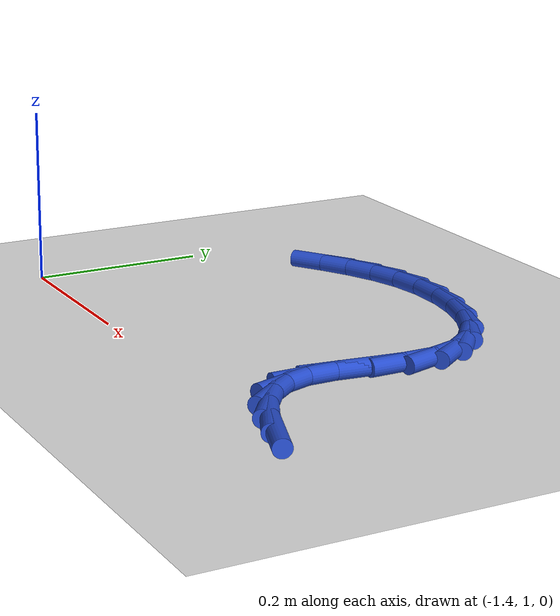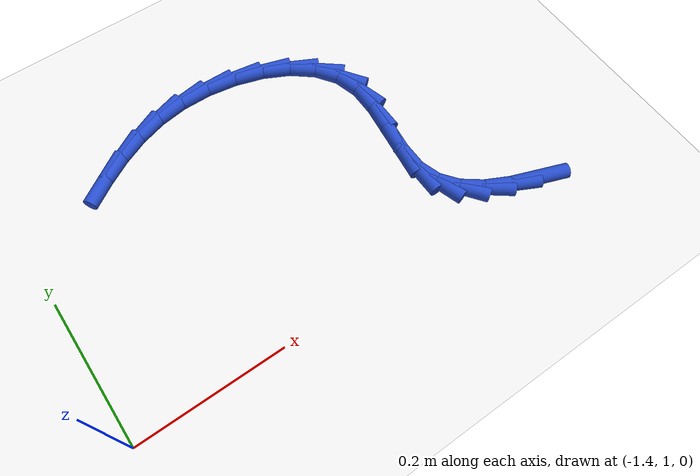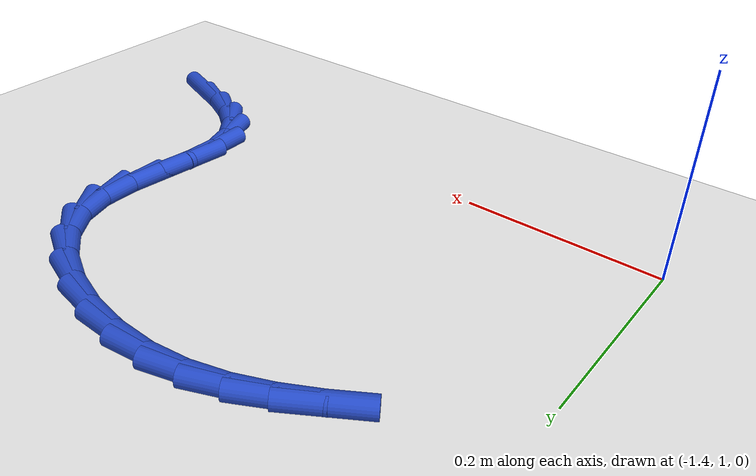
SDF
<sdf version="1.6">
 <world name="default">
  <model name="ground_plane">
   <static>1</static>
   <link name="link">
    <collision name="collision">
     <geometry><plane><normal>0 0 1</normal><size>100 100</size></plane></geometry>
     <surface><friction><ode><mu>100</mu><mu2>50</mu2></ode></friction></surface>
    </collision>
    <visual name="visual">
     <cast_shadows>0</cast_shadows>
     <geometry><plane><normal>0 0 1</normal><size>100 100</size></plane></geometry>
     <material>
      <script><uri>file://media/materials/scripts/gazebo.material</uri><name>Gazebo/WhiteGlow</name></script>
     </material>
    </visual>
   </link>
  </model>
  <model name="line">
   <link name="link_39">
    <pose>-0.8067034731325042 0.9986395679550258 0.01 0 1.57 -0.34571370823785347</pose>
    <collision name="collision">
     <geometry><cylinder><radius>0.01</radius><length>0.08</length></cylinder></geometry>
    </collision>
    <visual name="visual">
     <material>
      <script><name>Gazebo/Blue</name><uri>file://media/materials/scripts/gazebo.material</uri></script>
     </material>
     <geometry><cylinder><radius>0.01</radius><length>0.08</length></cylinder></geometry>
    </visual>
   </link>
   <link name="link_40">
    <pose>-0.8429850394107308 1.0117074128338435 0.01 0 1.57 -0.4579884233202828</pose>
    <collision name="collision">
     <geometry><cylinder><radius>0.01</radius><length>0.08</length></cylinder></geometry>
    </collision>
    <visual name="visual">
     <material>
      <script><name>Gazebo/Blue</name><uri>file://media/materials/scripts/gazebo.material</uri></script>
     </material>
     <geometry><cylinder><radius>0.01</radius><length>0.08</length></cylinder></geometry>
    </visual>
   </link>
   <link name="link_41">
    <pose>-0.8745980895237555 1.0272909363625864 0.01 0 1.57 -0.638605797465694</pose>
    <collision name="collision">
     <geometry><cylinder><radius>0.01</radius><length>0.08</length></cylinder></geometry>
    </collision>
    <visual name="visual">
     <material>
      <script><name>Gazebo/Blue</name><uri>file://media/materials/scripts/gazebo.material</uri></script>
     </material>
     <geometry><cylinder><radius>0.01</radius><length>0.08</length></cylinder></geometry>
    </visual>
   </link>
   <link name="link_42">
    <pose>-0.9001272872627917 1.0462432765376921 0.01 0 1.57 -0.9096037497589556</pose>
    <collision name="collision">
     <geometry><cylinder><radius>0.01</radius><length>0.08</length></cylinder></geometry>
    </collision>
    <visual name="visual">
     <material>
      <script><name>Gazebo/Blue</name><uri>file://media/materials/scripts/gazebo.material</uri></script>
     </material>
     <geometry><cylinder><radius>0.01</radius><length>0.08</length></cylinder></geometry>
    </visual>
   </link>
   <link name="link_43">
    <pose>-0.918157296419053 1.0694175713555982 0.01 0 1.57 -1.2586147398134726</pose>
    <collision name="collision">
     <geometry><cylinder><radius>0.01</radius><length>0.08</length></cylinder></geometry>
    </collision>
    <visual name="visual">
     <material>
      <script><name>Gazebo/Blue</name><uri>file://media/materials/scripts/gazebo.material</uri></script>
     </material>
     <geometry><cylinder><radius>0.01</radius><length>0.08</length></cylinder></geometry>
    </visual>
   </link>
   <link name="link_44">
    <pose>-0.9272741298872564 1.0976662705022981 0.01 0 1.57 -1.5647889561910269</pose>
    <collision name="collision">
     <geometry><cylinder><radius>0.01</radius><length>0.08</length></cylinder></geometry>
    </collision>
    <visual name="visual">
     <material>
      <script><name>Gazebo/Blue</name><uri>file://media/materials/scripts/gazebo.material</uri></script>
     </material>
     <geometry><cylinder><radius>0.01</radius><length>0.08</length></cylinder></geometry>
    </visual>
   </link>
   <link name="link_45">
    <pose>-0.9274751119184704 1.1311217748730886 0.01 0 1.57 1.445225749788773</pose>
    <collision name="collision">
     <geometry><cylinder><radius>0.01</radius><length>0.08</length></cylinder></geometry>
    </collision>
    <visual name="visual">
     <material>
      <script><name>Gazebo/Blue</name><uri>file://media/materials/scripts/gazebo.material</uri></script>
     </material>
     <geometry><cylinder><radius>0.01</radius><length>0.08</length></cylinder></geometry>
    </visual>
   </link>
   <link name="link_46">
    <pose>-0.9228408539802762 1.1678331987737491 0.01 0 1.57 1.4477633647388397</pose>
    <collision name="collision">
     <geometry><cylinder><radius>0.01</radius><length>0.08</length></cylinder></geometry>
    </collision>
    <visual name="visual">
     <material>
      <script><name>Gazebo/Blue</name><uri>file://media/materials/scripts/gazebo.material</uri></script>
     </material>
     <geometry><cylinder><radius>0.01</radius><length>0.08</length></cylinder></geometry>
    </visual>
   </link>
   <link name="link_47">
    <pose>-0.918186152270588 1.2054750766380515 0.01 0 1.57 -1.5669435792291668</pose>
    <collision name="collision">
     <geometry><cylinder><radius>0.01</radius><length>0.08</length></cylinder></geometry>
    </collision>
    <visual name="visual">
     <material>
      <script><name>Gazebo/Blue</name><uri>file://media/materials/scripts/gazebo.material</uri></script>
     </material>
     <geometry><cylinder><radius>0.01</radius><length>0.08</length></cylinder></geometry>
    </visual>
   </link>
   <link name="link_48">
    <pose>-0.9183258029873199 1.2417219428997683 0.01 0 1.57 -1.2855295612321902</pose>
    <collision name="collision">
     <geometry><cylinder><radius>0.01</radius><length>0.08</length></cylinder></geometry>
    </collision>
    <visual name="visual">
     <material>
      <script><name>Gazebo/Blue</name><uri>file://media/materials/scripts/gazebo.material</uri></script>
     </material>
     <geometry><cylinder><radius>0.01</radius><length>0.08</length></cylinder></geometry>
    </visual>
   </link>
   <link name="link_49">
    <pose>-0.9278819278177858 1.2743071999783715 0.01 0 1.57 -0.9452894042216033</pose>
    <collision name="collision">
     <geometry><cylinder><radius>0.01</radius><length>0.08</length></cylinder></geometry>
    </collision>
    <visual name="visual">
     <material>
      <script><name>Gazebo/Blue</name><uri>file://media/materials/scripts/gazebo.material</uri></script>
     </material>
     <geometry><cylinder><radius>0.01</radius><length>0.08</length></cylinder></geometry>
    </visual>
   </link>
   <link name="link_50">
    <pose>-0.9479199833150228 1.302050920821843 0.01 0 1.57 -0.67288594004278</pose>
    <collision name="collision">
     <geometry><cylinder><radius>0.01</radius><length>0.08</length></cylinder></geometry>
    </collision>
    <visual name="visual">
     <material>
      <script><name>Gazebo/Blue</name><uri>file://media/materials/scripts/gazebo.material</uri></script>
     </material>
     <geometry><cylinder><radius>0.01</radius><length>0.08</length></cylinder></geometry>
    </visual>
   </link>
   <link name="link_51">
    <pose>-0.9763760189339781 1.3247293084429344 0.01 0 1.57 -0.46526556914613</pose>
    <collision name="collision">
     <geometry><cylinder><radius>0.01</radius><length>0.08</length></cylinder></geometry>
    </collision>
    <visual name="visual">
     <material>
      <script><name>Gazebo/Blue</name><uri>file://media/materials/scripts/gazebo.material</uri></script>
     </material>
     <geometry><cylinder><radius>0.01</radius><length>0.08</length></cylinder></geometry>
    </visual>
   </link>
   <link name="link_52">
    <pose>-1.0110793002096736 1.3421511916244138 0.01 0 1.57 -0.29948714543218113</pose>
    <collision name="collision">
     <geometry><cylinder><radius>0.01</radius><length>0.08</length></cylinder></geometry>
    </collision>
    <visual name="visual">
     <material>
      <script><name>Gazebo/Blue</name><uri>file://media/materials/scripts/gazebo.material</uri></script>
     </material>
     <geometry><cylinder><radius>0.01</radius><length>0.08</length></cylinder></geometry>
    </visual>
   </link>
   <link name="link_53">
    <pose>-1.0498590926771316 1.3541253991490518 0.01 0 1.57 -0.15447462341094012</pose>
    <collision name="collision">
     <geometry><cylinder><radius>0.01</radius><length>0.08</length></cylinder></geometry>
    </collision>
    <visual name="visual">
     <material>
      <script><name>Gazebo/Blue</name><uri>file://media/materials/scripts/gazebo.material</uri></script>
     </material>
     <geometry><cylinder><radius>0.01</radius><length>0.08</length></cylinder></geometry>
    </visual>
   </link>
   <link name="link_54">
    <pose>-1.0905446618713748 1.3604607597996177 0.01 0 1.57 -0.012501449502034969</pose>
    <collision name="collision">
     <geometry><cylinder><radius>0.01</radius><length>0.08</length></cylinder></geometry>
    </collision>
    <visual name="visual">
     <material>
      <script><name>Gazebo/Blue</name><uri>file://media/materials/scripts/gazebo.material</uri></script>
     </material>
     <geometry><cylinder><radius>0.01</radius><length>0.08</length></cylinder></geometry>
    </visual>
   </link>
   <link name="link_55">
    <pose>-1.1309652733274256 1.3609661023588806 0.01 0 1.57 0.14050149324449962</pose>
    <collision name="collision">
     <geometry><cylinder><radius>0.01</radius><length>0.08</length></cylinder></geometry>
    </collision>
    <visual name="visual">
     <material>
      <script><name>Gazebo/Blue</name><uri>file://media/materials/scripts/gazebo.material</uri></script>
     </material>
     <geometry><cylinder><radius>0.01</radius><length>0.08</length></cylinder></geometry>
    </visual>
   </link>
   <link name="link_56">
    <pose>-1.169182039686263 1.355560975783334 0.01 0 1.57 0.2885229644580882</pose>
    <collision name="collision">
     <geometry><cylinder><radius>0.01</radius><length>0.08</length></cylinder></geometry>
    </collision>
    <visual name="visual">
     <material>
      <script><name>Gazebo/Blue</name><uri>file://media/materials/scripts/gazebo.material</uri></script>
     </material>
     <geometry><cylinder><radius>0.01</radius><length>0.08</length></cylinder></geometry>
    </visual>
   </link>
   <link name="link_57">
    <pose>-1.2049125416653537 1.3449559867070715 0.01 0 1.57 0.4127586479412599</pose>
    <collision name="collision">
     <geometry><cylinder><radius>0.01</radius><length>0.08</length></cylinder></geometry>
    </collision>
    <visual name="visual">
     <material>
      <script><name>Gazebo/Blue</name><uri>file://media/materials/scripts/gazebo.material</uri></script>
     </material>
     <geometry><cylinder><radius>0.01</radius><length>0.08</length></cylinder></geometry>
    </visual>
   </link>
   <link name="link_58">
    <pose>-1.2385950517450475 1.33020591305267 0.01 0 1.57 0.50755357179087</pose>
    <collision name="collision">
     <geometry><cylinder><radius>0.01</radius><length>0.08</length></cylinder></geometry>
    </collision>
    <visual name="visual">
     <material>
      <script><name>Gazebo/Blue</name><uri>file://media/materials/scripts/gazebo.material</uri></script>
     </material>
     <geometry><cylinder><radius>0.01</radius><length>0.08</length></cylinder></geometry>
    </visual>
   </link>
   <link name="link_59">
    <pose>-1.270670801120188 1.3123669456970783 0.01 0 1.57 0.5713561259265374</pose>
    <collision name="collision">
     <geometry><cylinder><radius>0.01</radius><length>0.08</length></cylinder></geometry>
    </collision>
    <visual name="visual">
     <material>
      <script><name>Gazebo/Blue</name><uri>file://media/materials/scripts/gazebo.material</uri></script>
     </material>
     <geometry><cylinder><radius>0.01</radius><length>0.08</length></cylinder></geometry>
    </visual>
   </link>
  </model>
 </world>
</sdf>
